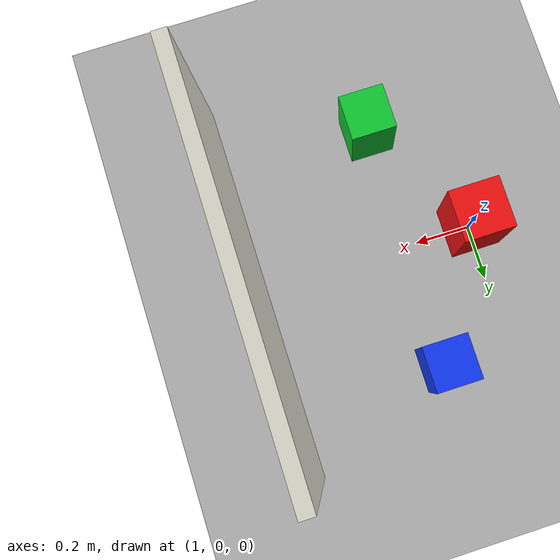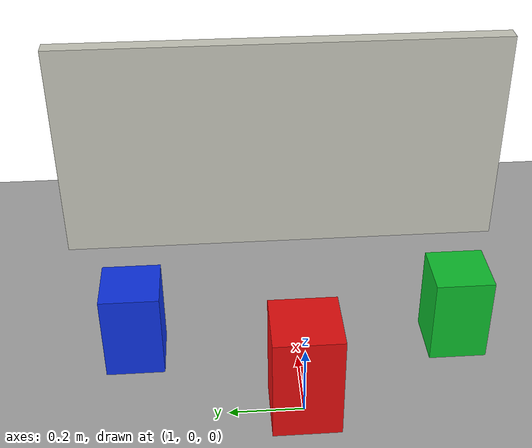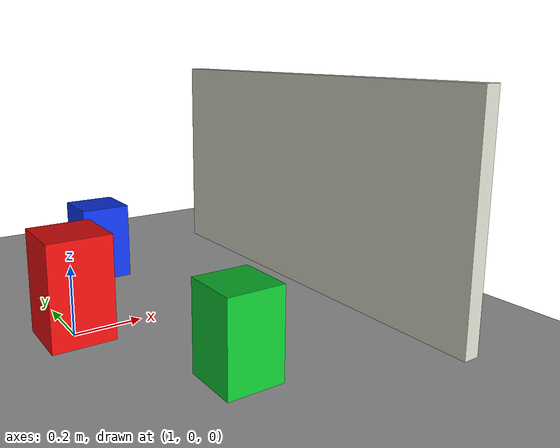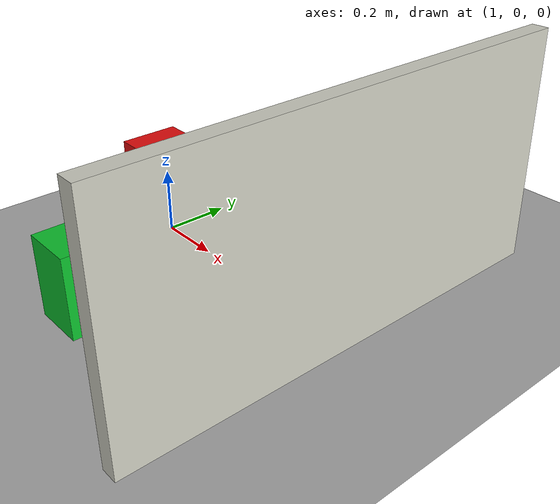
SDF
<?xml version="1.0"?>
<sdf version="1.8">
  <world name="footbot_world">
    <gravity>0 0 -9.81</gravity>
    <magnetic_field>0 0 0</magnetic_field>
    <atmosphere type="adiabatic"/>

    <plugin
      filename="ignition-gazebo-physics-system"
      name="ignition::gazebo::systems::Physics"/>
    <plugin
      filename="ignition-gazebo-user-commands-system"
      name="ignition::gazebo::systems::UserCommands"/>
    <plugin
      filename="ignition-gazebo-scene-broadcaster-system"
      name="ignition::gazebo::systems::SceneBroadcaster"/>
    <plugin
      filename="ignition-gazebo-sensors-system"
      name="ignition::gazebo::systems::Sensors">
      <render_engine>ogre2</render_engine>
    </plugin>

    <physics name="default_physics" type="ignored">
      <max_step_size>0.001</max_step_size>
      <real_time_factor>1.0</real_time_factor>
    </physics>

    <scene>
      <ambient>0.5 0.5 0.5 1.0</ambient>
      <background>0.78 0.82 0.88 1.0</background>
      <shadows>true</shadows>
    </scene>

    <light name="sun" type="directional">
      <cast_shadows>true</cast_shadows>
      <pose>0 0 5 0 0 0</pose>
      <diffuse>0.8 0.8 0.8 1</diffuse>
      <specular>0.2 0.2 0.2 1</specular>
      <attenuation>
        <range>1000</range>
        <constant>0.9</constant>
        <linear>0.01</linear>
        <quadratic>0.001</quadratic>
      </attenuation>
      <direction>-0.5 0.1 -0.9</direction>
    </light>

    <model name="ground_plane">
      <static>true</static>
      <link name="ground_link">
        <collision name="ground_collision">
          <geometry>
            <plane>
              <normal>0 0 1</normal>
              <size>10 10</size>
            </plane>
          </geometry>
        </collision>
        <visual name="ground_visual">
          <geometry>
            <plane>
              <normal>0 0 1</normal>
              <size>10 10</size>
            </plane>
          </geometry>
          <material>
            <ambient>0.55 0.55 0.55 1</ambient>
            <diffuse>0.65 0.65 0.65 1</diffuse>
            <specular>0.05 0.05 0.05 1</specular>
          </material>
        </visual>
      </link>
    </model>

    <model name="red_camera_target">
      <static>true</static>
      <pose>1.0 0 0.15 0 0 0</pose>
      <link name="link">
        <collision name="collision">
          <geometry>
            <box>
              <size>0.18 0.18 0.30</size>
            </box>
          </geometry>
        </collision>
        <visual name="visual">
          <geometry>
            <box>
              <size>0.18 0.18 0.30</size>
            </box>
          </geometry>
          <material>
            <ambient>0.9 0.05 0.05 1</ambient>
            <diffuse>0.9 0.05 0.05 1</diffuse>
          </material>
        </visual>
      </link>
    </model>

    <model name="blue_left_target">
      <static>true</static>
      <pose>1.25 0.45 0.125 0 0 0</pose>
      <link name="link">
        <collision name="collision">
          <geometry>
            <box>
              <size>0.16 0.16 0.25</size>
            </box>
          </geometry>
        </collision>
        <visual name="visual">
          <geometry>
            <box>
              <size>0.16 0.16 0.25</size>
            </box>
          </geometry>
          <material>
            <ambient>0.05 0.20 0.9 1</ambient>
            <diffuse>0.05 0.20 0.9 1</diffuse>
          </material>
        </visual>
      </link>
    </model>

    <model name="green_right_target">
      <static>true</static>
      <pose>1.25 -0.45 0.125 0 0 0</pose>
      <link name="link">
        <collision name="collision">
          <geometry>
            <box>
              <size>0.16 0.16 0.25</size>
            </box>
          </geometry>
        </collision>
        <visual name="visual">
          <geometry>
            <box>
              <size>0.16 0.16 0.25</size>
            </box>
          </geometry>
          <material>
            <ambient>0.05 0.75 0.18 1</ambient>
            <diffuse>0.05 0.75 0.18 1</diffuse>
          </material>
        </visual>
      </link>
    </model>

    <model name="rear_marker_wall">
      <static>true</static>
      <pose>1.8 0 0.35 0 0 0</pose>
      <link name="link">
        <collision name="collision">
          <geometry>
            <box>
              <size>0.05 1.4 0.70</size>
            </box>
          </geometry>
        </collision>
        <visual name="visual">
          <geometry>
            <box>
              <size>0.05 1.4 0.70</size>
            </box>
          </geometry>
          <material>
            <ambient>0.8 0.8 0.75 1</ambient>
            <diffuse>0.8 0.8 0.75 1</diffuse>
          </material>
        </visual>
      </link>
    </model>
  </world>
</sdf>
